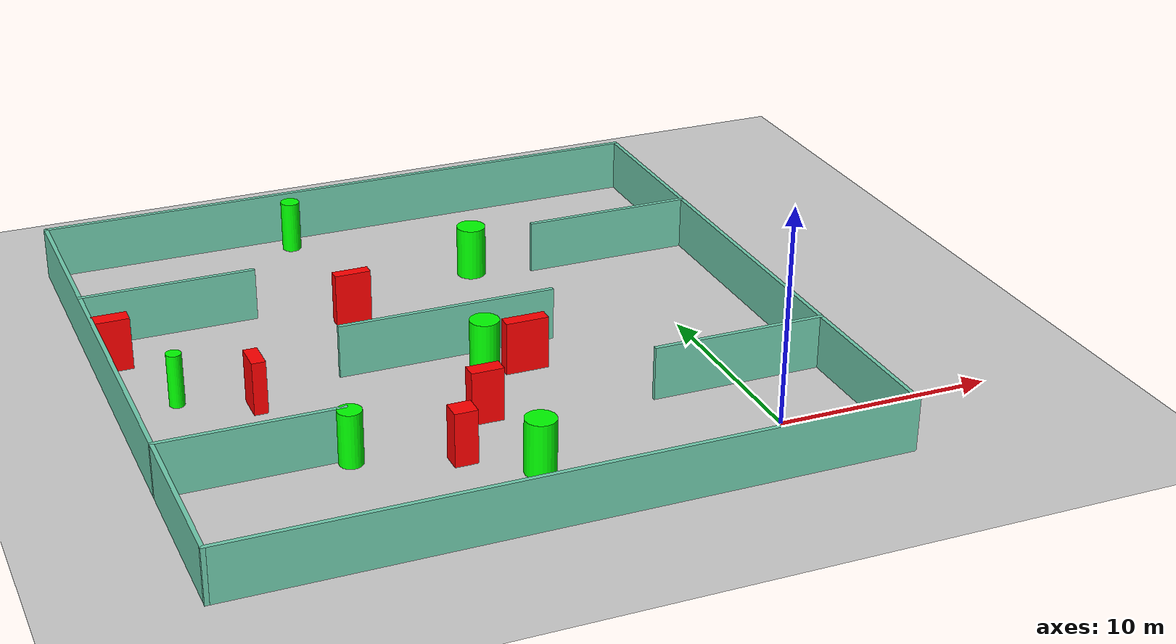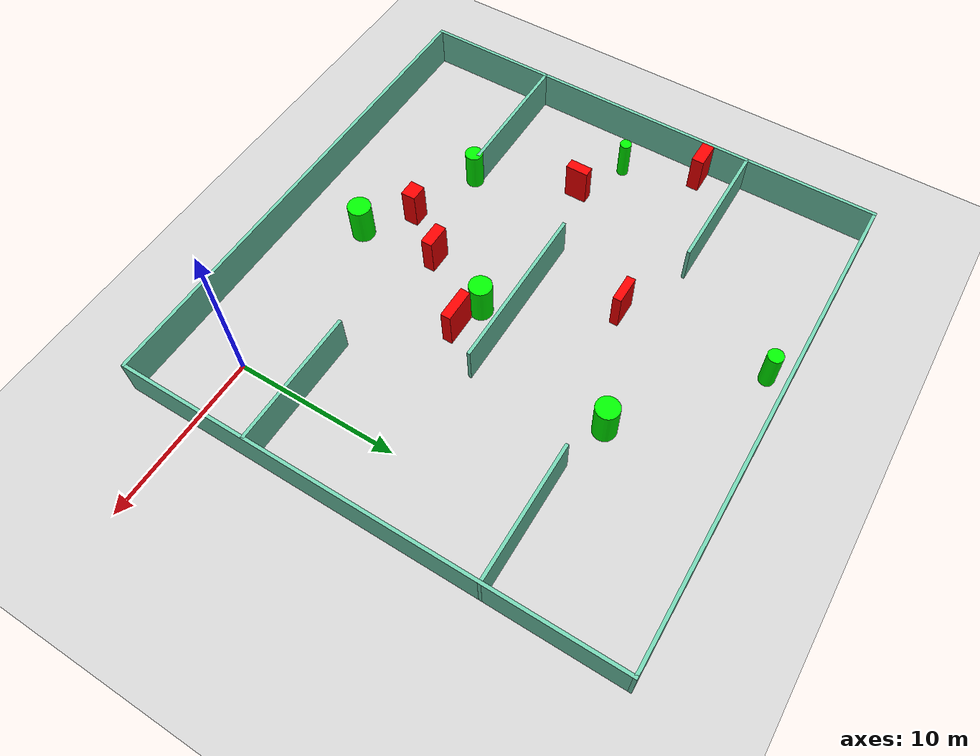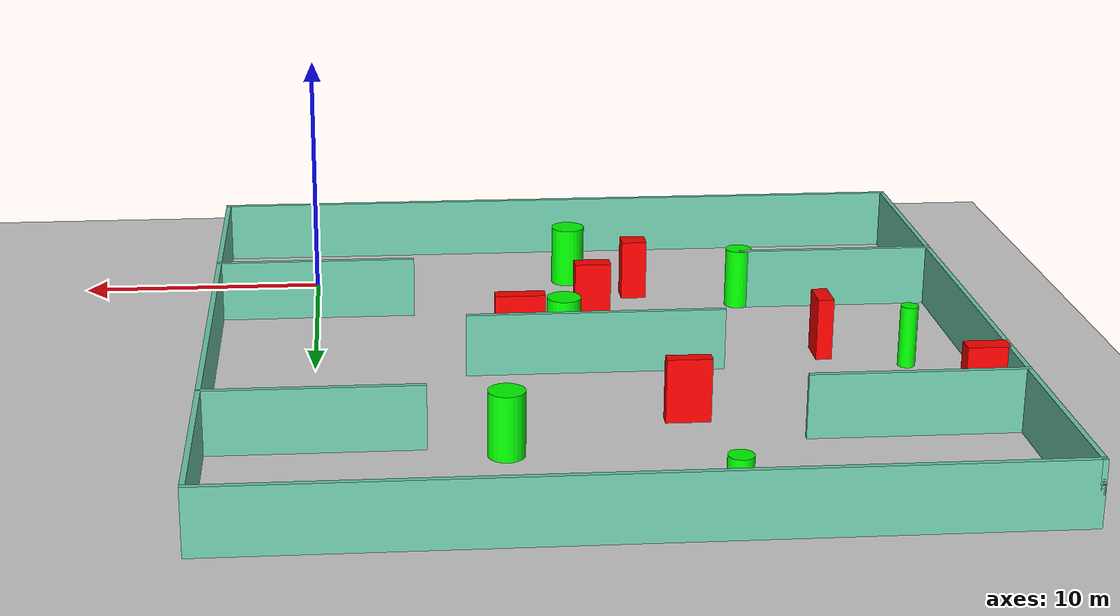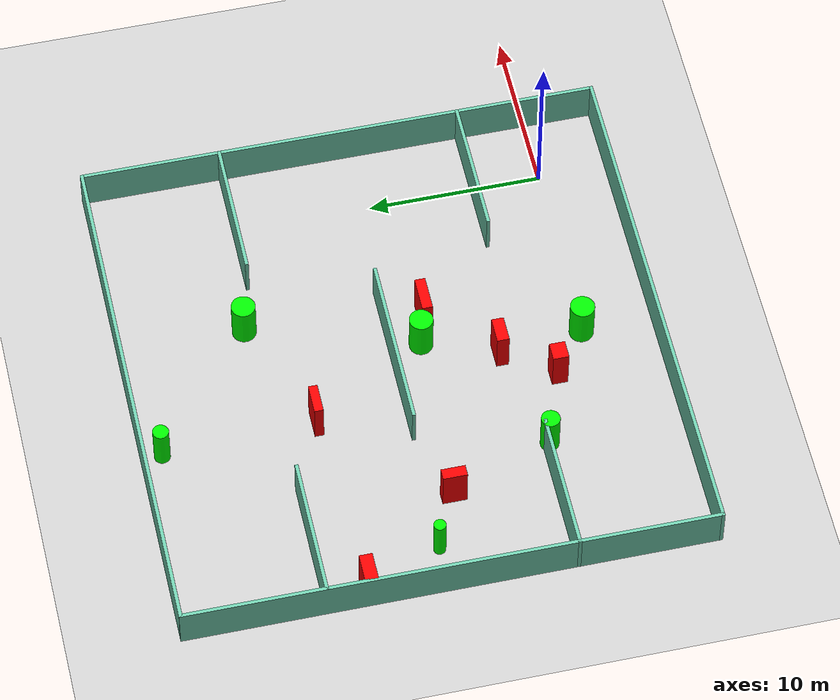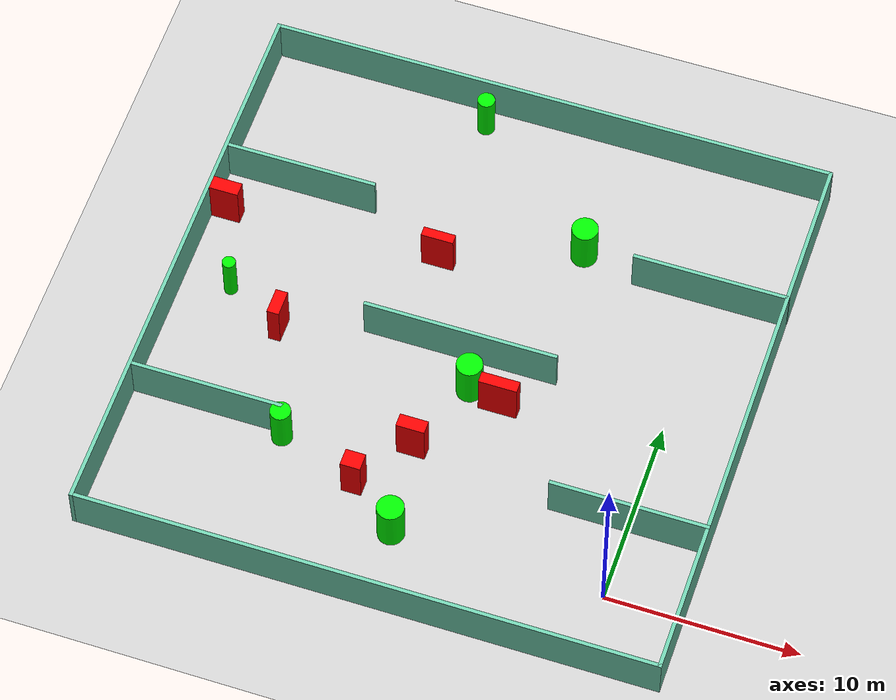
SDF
<sdf version="1.7">
 <world name="default">
  <light name="sun" type="directional">
   <pose>0 0 10 0 -0 0</pose>
   <diffuse>0.8 0.8 0.8 1</diffuse>
   <specular>0.2 0.2 0.2 1</specular>
   <attenuation>
    <range>1000</range>
    <constant>0.9</constant>
    <linear>0.01</linear>
    <quadratic>0.001</quadratic>
   </attenuation>
   <direction>-0.5 0.1 -0.9</direction>
   <spot><inner_angle>0</inner_angle><outer_angle>0</outer_angle><falloff>0</falloff></spot>
  </light>
  <model name="ground_plane">
   <static>1</static>
   <link name="link">
    <collision name="collision">
     <geometry><plane><normal>0 0 1</normal><size>100 100</size></plane></geometry>
     <surface>
      <contact><collide_bitmask>65535</collide_bitmask></contact>
      <friction><ode><mu>100</mu><mu2>50</mu2></ode></friction>
     </surface>
    </collision>
    <visual name="visual">
     <cast_shadows>0</cast_shadows>
     <geometry><plane><normal>0 0 1</normal><size>100 100</size></plane></geometry>
     <material>
      <script><uri>file://media/materials/scripts/gazebo.material</uri><name>Gazebo/Grey</name></script>
     </material>
    </visual>
   </link>
  </model>
  <gravity>0 0 -9.8</gravity>
  <magnetic_field>6e-06 2.3e-05 -4.2e-05</magnetic_field>
  <atmosphere type="adiabatic"/>
  <physics type="ode">
   <max_step_size>0.001</max_step_size>
   <real_time_factor>1</real_time_factor>
   <real_time_update_rate>1000</real_time_update_rate>
  </physics>
  <scene><ambient>0.4 0.4 0.4 1</ambient><background>0.7 0.7 0.7 1</background><shadows>1</shadows></scene>
  <spherical_coordinates>
   <surface_model>EARTH_WGS84</surface_model>
   <latitude_deg>0</latitude_deg>
   <longitude_deg>0</longitude_deg>
   <elevation>0</elevation>
   <heading_deg>0</heading_deg>
  </spherical_coordinates>
  <model name="my_base_walls">
   <link name="Wall_10">
    <collision name="Wall_10_Collision">
     <geometry><box><size>8.2 0.2 2.5</size></box></geometry>
     <pose>0 0 1.25 0 -0 0</pose>
    </collision>
    <visual name="Wall_10_Visual">
     <pose>0 0 1.25 0 -0 0</pose>
     <geometry><box><size>8.2 0.2 2.5</size></box></geometry>
     <material>
      <script><uri>file://media/materials/scripts/gazebo.material</uri><name>Gazebo/Grey</name></script>
      <ambient>0.435294 0.796078 0.67451 1</ambient>
     </material>
     <meta><layer>0</layer></meta>
    </visual>
    <pose>-11 -7 0 0 -0 0</pose>
   </link>
   <link name="Wall_12">
    <collision name="Wall_12_Collision">
     <geometry><box><size>8.2 0.2 2.5</size></box></geometry>
     <pose>0 0 1.25 0 -0 0</pose>
    </collision>
    <visual name="Wall_12_Visual">
     <pose>0 0 1.25 0 -0 0</pose>
     <geometry><box><size>8.2 0.2 2.5</size></box></geometry>
     <material>
      <script><uri>file://media/materials/scripts/gazebo.material</uri><name>Gazebo/Grey</name></script>
      <ambient>0.435294 0.796078 0.67451 1</ambient>
     </material>
     <meta><layer>0</layer></meta>
    </visual>
    <pose>-11 7 0 0 -0 0</pose>
   </link>
   <link name="Wall_14">
    <collision name="Wall_14_Collision">
     <geometry><box><size>8.2 0.2 2.5</size></box></geometry>
     <pose>0 0 1.25 0 -0 0</pose>
    </collision>
    <visual name="Wall_14_Visual">
     <pose>0 0 1.25 0 -0 0</pose>
     <geometry><box><size>8.2 0.2 2.5</size></box></geometry>
     <material>
      <script><uri>file://media/materials/scripts/gazebo.material</uri><name>Gazebo/Grey</name></script>
      <ambient>0.435294 0.796078 0.67451 1</ambient>
     </material>
     <meta><layer>0</layer></meta>
    </visual>
    <pose>11 7 0 0 -0 3.14159</pose>
   </link>
   <link name="Wall_16">
    <collision name="Wall_16_Collision">
     <geometry><box><size>10.2 0.2 2.5</size></box></geometry>
     <pose>0 0 1.25 0 -0 0</pose>
    </collision>
    <visual name="Wall_16_Visual">
     <pose>0 0 1.25 0 -0 0</pose>
     <geometry><box><size>10.2 0.2 2.5</size></box></geometry>
     <material>
      <script><uri>file://media/materials/scripts/gazebo.material</uri><name>Gazebo/Grey</name></script>
      <ambient>0.435294 0.796078 0.67451 1</ambient>
     </material>
     <meta><layer>0</layer></meta>
    </visual>
    <pose>0 0 0 0 -0 3.14159</pose>
   </link>
   <link name="Wall_2">
    <collision name="Wall_2_Collision">
     <geometry><box><size>30.2 0.2 2.5</size></box></geometry>
     <pose>0 0 1.25 0 -0 0</pose>
    </collision>
    <visual name="Wall_2_Visual">
     <pose>0 0 1.25 0 -0 0</pose>
     <geometry><box><size>30.2 0.2 2.5</size></box></geometry>
     <material>
      <script><uri>file://media/materials/scripts/gazebo.material</uri><name>Gazebo/Grey</name></script>
      <ambient>0.435294 0.796078 0.67451 1</ambient>
     </material>
     <meta><layer>0</layer></meta>
    </visual>
    <pose>0 -15 0 0 -0 3.14159</pose>
   </link>
   <link name="Wall_3">
    <collision name="Wall_3_Collision">
     <geometry><box><size>30.2 0.2 2.5</size></box></geometry>
     <pose>0 0 1.25 0 -0 0</pose>
    </collision>
    <visual name="Wall_3_Visual">
     <pose>0 0 1.25 0 -0 0</pose>
     <geometry><box><size>30.2 0.2 2.5</size></box></geometry>
     <material>
      <script><uri>file://media/materials/scripts/gazebo.material</uri><name>Gazebo/Grey</name></script>
      <ambient>0.435294 0.796078 0.67451 1</ambient>
     </material>
     <meta><layer>0</layer></meta>
    </visual>
    <pose>-15 0 0 0 -0 1.5708</pose>
   </link>
   <link name="Wall_4">
    <collision name="Wall_4_Collision">
     <geometry><box><size>30.2 0.2 2.5</size></box></geometry>
     <pose>0 0 1.25 0 -0 0</pose>
    </collision>
    <visual name="Wall_4_Visual">
     <pose>0 0 1.25 0 -0 0</pose>
     <geometry><box><size>30.2 0.2 2.5</size></box></geometry>
     <material>
      <script><uri>file://media/materials/scripts/gazebo.material</uri><name>Gazebo/Grey</name></script>
      <ambient>0.435294 0.796078 0.67451 1</ambient>
     </material>
     <meta><layer>0</layer></meta>
    </visual>
    <pose>0 15 0 0 -0 0</pose>
   </link>
   <link name="Wall_6">
    <collision name="Wall_6_Collision">
     <geometry><box><size>30.2 0.2 2.5</size></box></geometry>
     <pose>0 0 1.25 0 -0 0</pose>
    </collision>
    <visual name="Wall_6_Visual">
     <pose>0 0 1.25 0 -0 0</pose>
     <geometry><box><size>30.2 0.2 2.5</size></box></geometry>
     <material>
      <script><uri>file://media/materials/scripts/gazebo.material</uri><name>Gazebo/Grey</name></script>
      <ambient>0.435294 0.796078 0.67451 1</ambient>
     </material>
     <meta><layer>0</layer></meta>
    </visual>
    <pose>15 0 0 0 -0 1.5708</pose>
   </link>
   <link name="Wall_8">
    <collision name="Wall_8_Collision">
     <geometry><box><size>8.2 0.2 2.5</size></box></geometry>
     <pose>0 0 1.25 0 -0 0</pose>
    </collision>
    <visual name="Wall_8_Visual">
     <pose>0 0 1.25 0 -0 0</pose>
     <geometry><box><size>8.2 0.2 2.5</size></box></geometry>
     <material>
      <script><uri>file://media/materials/scripts/gazebo.material</uri><name>Gazebo/Grey</name></script>
      <ambient>0.435294 0.796078 0.67451 1</ambient>
     </material>
     <meta><layer>0</layer></meta>
    </visual>
    <pose>11 -7 0 0 -0 3.14159</pose>
   </link>
   <static>1</static>
   <pose>-11 11 0 0 -0 0</pose>
  </model>
  <model name="cylinder1">
   <static>1</static>
   <link name="link">
    <inertial>
     <mass>1</mass>
     <inertia><ixx>0.5</ixx><ixy>0</ixy><ixz>0</ixz><iyy>0.5</iyy><iyz>0</iyz><izz>1</izz></inertia>
    </inertial>
    <collision name="collision">
     <geometry><cylinder><radius>0.4567611920801477</radius><length>2.5</length></cylinder></geometry>
    </collision>
    <visual name="visual">
     <geometry><cylinder><radius>0.4567611920801477</radius><length>2.5</length></cylinder></geometry>
     <material>
      <ambient>0 1 0 1</ambient>
      <diffuse>0 1 0 1</diffuse>
      <specular>0.1 0.1 0.1 1</specular>
      <emissive>0 0 0 0</emissive>
     </material>
    </visual>
   </link>
   <pose>-14.17901154924451 24.85180293168493 1.25 0 0 0</pose>
  </model>
  <model name="cylinder2">
   <static>1</static>
   <link name="link">
    <inertial>
     <mass>1</mass>
     <inertia><ixx>0.5</ixx><ixy>0</ixy><ixz>0</ixz><iyy>0.5</iyy><iyz>0</iyz><izz>1</izz></inertia>
    </inertial>
    <collision name="collision">
     <geometry><cylinder><radius>0.5373154449036923</radius><length>2.5</length></cylinder></geometry>
    </collision>
    <visual name="visual">
     <geometry><cylinder><radius>0.5373154449036923</radius><length>2.5</length></cylinder></geometry>
     <material>
      <ambient>0 1 0 1</ambient>
      <diffuse>0 1 0 1</diffuse>
      <specular>0.1 0.1 0.1 1</specular>
      <emissive>0 0 0 0</emissive>
     </material>
    </visual>
   </link>
   <pose>-17.926709286524545 3.6813451840510307 1.25 0 0 0</pose>
  </model>
  <model name="cylinder3">
   <static>1</static>
   <link name="link">
    <inertial>
     <mass>1</mass>
     <inertia><ixx>0.5</ixx><ixy>0</ixy><ixz>0</ixz><iyy>0.5</iyy><iyz>0</iyz><izz>1</izz></inertia>
    </inertial>
    <collision name="collision">
     <geometry><cylinder><radius>0.34750547826894507</radius><length>2.5</length></cylinder></geometry>
    </collision>
    <visual name="visual">
     <geometry><cylinder><radius>0.34750547826894507</radius><length>2.5</length></cylinder></geometry>
     <material>
      <ambient>0 1 0 1</ambient>
      <diffuse>0 1 0 1</diffuse>
      <specular>0.1 0.1 0.1 1</specular>
      <emissive>0 0 0 0</emissive>
     </material>
    </visual>
   </link>
   <pose>-23.370443592455516 11.170535844725556 1.25 0 0 0</pose>
  </model>
  <model name="cylinder4">
   <static>1</static>
   <link name="link">
    <inertial>
     <mass>1</mass>
     <inertia><ixx>0.5</ixx><ixy>0</ixy><ixz>0</ixz><iyy>0.5</iyy><iyz>0</iyz><izz>1</izz></inertia>
    </inertial>
    <collision name="collision">
     <geometry><cylinder><radius>0.6801840896859361</radius><length>2.5</length></cylinder></geometry>
    </collision>
    <visual name="visual">
     <geometry><cylinder><radius>0.6801840896859361</radius><length>2.5</length></cylinder></geometry>
     <material>
      <ambient>0 1 0 1</ambient>
      <diffuse>0 1 0 1</diffuse>
      <specular>0.1 0.1 0.1 1</specular>
      <emissive>0 0 0 0</emissive>
     </material>
    </visual>
   </link>
   <pose>-9.913277637411955 9.21166461305688 1.25 0 0 0</pose>
  </model>
  <model name="cylinder5">
   <static>1</static>
   <link name="link">
    <inertial>
     <mass>1</mass>
     <inertia><ixx>0.5</ixx><ixy>0</ixy><ixz>0</ixz><iyy>0.5</iyy><iyz>0</iyz><izz>1</izz></inertia>
    </inertial>
    <collision name="collision">
     <geometry><cylinder><radius>0.6905126097875213</radius><length>2.5</length></cylinder></geometry>
    </collision>
    <visual name="visual">
     <geometry><cylinder><radius>0.6905126097875213</radius><length>2.5</length></cylinder></geometry>
     <material>
      <ambient>0 1 0 1</ambient>
      <diffuse>0 1 0 1</diffuse>
      <specular>0.1 0.1 0.1 1</specular>
      <emissive>0 0 0 0</emissive>
     </material>
    </visual>
   </link>
   <pose>-6.9041737367276195 18.769616573752288 1.25 0 0 0</pose>
  </model>
  <model name="cylinder6">
   <static>1</static>
   <link name="link">
    <inertial>
     <mass>1</mass>
     <inertia><ixx>0.5</ixx><ixy>0</ixy><ixz>0</ixz><iyy>0.5</iyy><iyz>0</iyz><izz>1</izz></inertia>
    </inertial>
    <collision name="collision">
     <geometry><cylinder><radius>0.6982740771113444</radius><length>2.5</length></cylinder></geometry>
    </collision>
    <visual name="visual">
     <geometry><cylinder><radius>0.6982740771113444</radius><length>2.5</length></cylinder></geometry>
     <material>
      <ambient>0 1 0 1</ambient>
      <diffuse>0 1 0 1</diffuse>
      <specular>0.1 0.1 0.1 1</specular>
      <emissive>0 0 0 0</emissive>
     </material>
    </visual>
   </link>
   <pose>-10.983595092392648 0.17757380379308474 1.25 0 0 0</pose>
  </model>
  <model name="box1">
   <static>1</static>
   <link name="link">
    <inertial>
     <mass>1</mass>
     <inertia><ixx>0.083</ixx><ixy>0</ixy><ixz>0</ixz><iyy>0.083</iyy><iyz>0</iyz><izz>0.083</izz></inertia>
    </inertial>
    <collision name="collision">
     <geometry><box><size>1.657096781536274 0.751636076059839 2.5</size></box></geometry>
    </collision>
    <visual name="visual">
     <geometry><box><size>1.657096781536274 0.751636076059839 2.5</size></box></geometry>
     <material>
      <ambient>1 0 0 1</ambient>
      <diffuse>1 0 0 1</diffuse>
      <specular>0.1 0.1 0.1 1</specular>
      <emissive>0 0 0 0</emissive>
     </material>
    </visual>
    <sensor name="my_contact" type="contact">
     <contact><collision>box_collision</collision><topic>__default_topic__</topic></contact>
    </sensor>
   </link>
   <pose>-25.189952227121807 15.515386816760724 1.25 0 0 0</pose>
  </model>
  <model name="box2">
   <static>1</static>
   <link name="link">
    <inertial>
     <mass>1</mass>
     <inertia><ixx>0.083</ixx><ixy>0</ixy><ixz>0</ixz><iyy>0.083</iyy><iyz>0</iyz><izz>0.083</izz></inertia>
    </inertial>
    <collision name="collision">
     <geometry><box><size>1.043678820114024 0.907005556972382 2.5</size></box></geometry>
    </collision>
    <visual name="visual">
     <geometry><box><size>1.043678820114024 0.907005556972382 2.5</size></box></geometry>
     <material>
      <ambient>1 0 0 1</ambient>
      <diffuse>1 0 0 1</diffuse>
      <specular>0.1 0.1 0.1 1</specular>
      <emissive>0 0 0 0</emissive>
     </material>
    </visual>
    <sensor name="my_contact" type="contact">
     <contact><collision>box_collision</collision><topic>__default_topic__</topic></contact>
    </sensor>
   </link>
   <pose>-13.604425773824037 2.1666280141728205 1.25 0 0 0</pose>
  </model>
  <model name="box3">
   <static>1</static>
   <link name="link">
    <inertial>
     <mass>1</mass>
     <inertia><ixx>0.083</ixx><ixy>0</ixy><ixz>0</ixz><iyy>0.083</iyy><iyz>0</iyz><izz>0.083</izz></inertia>
    </inertial>
    <collision name="collision">
     <geometry><box><size>1.4878624305150665 0.7018072786308805 2.5</size></box></geometry>
    </collision>
    <visual name="visual">
     <geometry><box><size>1.4878624305150665 0.7018072786308805 2.5</size></box></geometry>
     <material>
      <ambient>1 0 0 1</ambient>
      <diffuse>1 0 0 1</diffuse>
      <specular>0.1 0.1 0.1 1</specular>
      <emissive>0 0 0 0</emissive>
     </material>
    </visual>
    <sensor name="my_contact" type="contact">
     <contact><collision>box_collision</collision><topic>__default_topic__</topic></contact>
    </sensor>
   </link>
   <pose>-11.511609242106845 5.035950928111726 1.25 0 0 0</pose>
  </model>
  <model name="box4">
   <static>1</static>
   <link name="link">
    <inertial>
     <mass>1</mass>
     <inertia><ixx>0.083</ixx><ixy>0</ixy><ixz>0</ixz><iyy>0.083</iyy><iyz>0</iyz><izz>0.083</izz></inertia>
    </inertial>
    <collision name="collision">
     <geometry><box><size>0.6361412922430378 1.3832660013691724 2.5</size></box></geometry>
    </collision>
    <visual name="visual">
     <geometry><box><size>0.6361412922430378 1.3832660013691724 2.5</size></box></geometry>
     <material>
      <ambient>1 0 0 1</ambient>
      <diffuse>1 0 0 1</diffuse>
      <specular>0.1 0.1 0.1 1</specular>
      <emissive>0 0 0 0</emissive>
     </material>
    </visual>
    <sensor name="my_contact" type="contact">
     <contact><collision>box_collision</collision><topic>__default_topic__</topic></contact>
    </sensor>
   </link>
   <pose>-20.236146214632747 9.670650537108655 1.25 0 0 0</pose>
  </model>
  <model name="box5">
   <static>1</static>
   <link name="link">
    <inertial>
     <mass>1</mass>
     <inertia><ixx>0.083</ixx><ixy>0</ixy><ixz>0</ixz><iyy>0.083</iyy><iyz>0</iyz><izz>0.083</izz></inertia>
    </inertial>
    <collision name="collision">
     <geometry><box><size>1.7068361393684714 0.5190102162534465 2.5</size></box></geometry>
    </collision>
    <visual name="visual">
     <geometry><box><size>1.7068361393684714 0.5190102162534465 2.5</size></box></geometry>
     <material>
      <ambient>1 0 0 1</ambient>
      <diffuse>1 0 0 1</diffuse>
      <specular>0.1 0.1 0.1 1</specular>
      <emissive>0 0 0 0</emissive>
     </material>
    </visual>
    <sensor name="my_contact" type="contact">
     <contact><collision>box_collision</collision><topic>__default_topic__</topic></contact>
    </sensor>
   </link>
   <pose>-13.84633946035295 16.059953984869303 1.25 0 0 0</pose>
  </model>
  <model name="box6">
   <static>1</static>
   <link name="link">
    <inertial>
     <mass>1</mass>
     <inertia><ixx>0.083</ixx><ixy>0</ixy><ixz>0</ixz><iyy>0.083</iyy><iyz>0</iyz><izz>0.083</izz></inertia>
    </inertial>
    <collision name="collision">
     <geometry><box><size>2.0110429440500504 0.6070116821563333 2.5</size></box></geometry>
    </collision>
    <visual name="visual">
     <geometry><box><size>2.0110429440500504 0.6070116821563333 2.5</size></box></geometry>
     <material>
      <ambient>1 0 0 1</ambient>
      <diffuse>1 0 0 1</diffuse>
      <specular>0.1 0.1 0.1 1</specular>
      <emissive>0 0 0 0</emissive>
     </material>
    </visual>
    <sensor name="my_contact" type="contact">
     <contact><collision>box_collision</collision><topic>__default_topic__</topic></contact>
    </sensor>
   </link>
   <pose>-8.193291910420104 8.689948599649473 1.25 0 0 0</pose>
  </model>
 </world>
</sdf>
